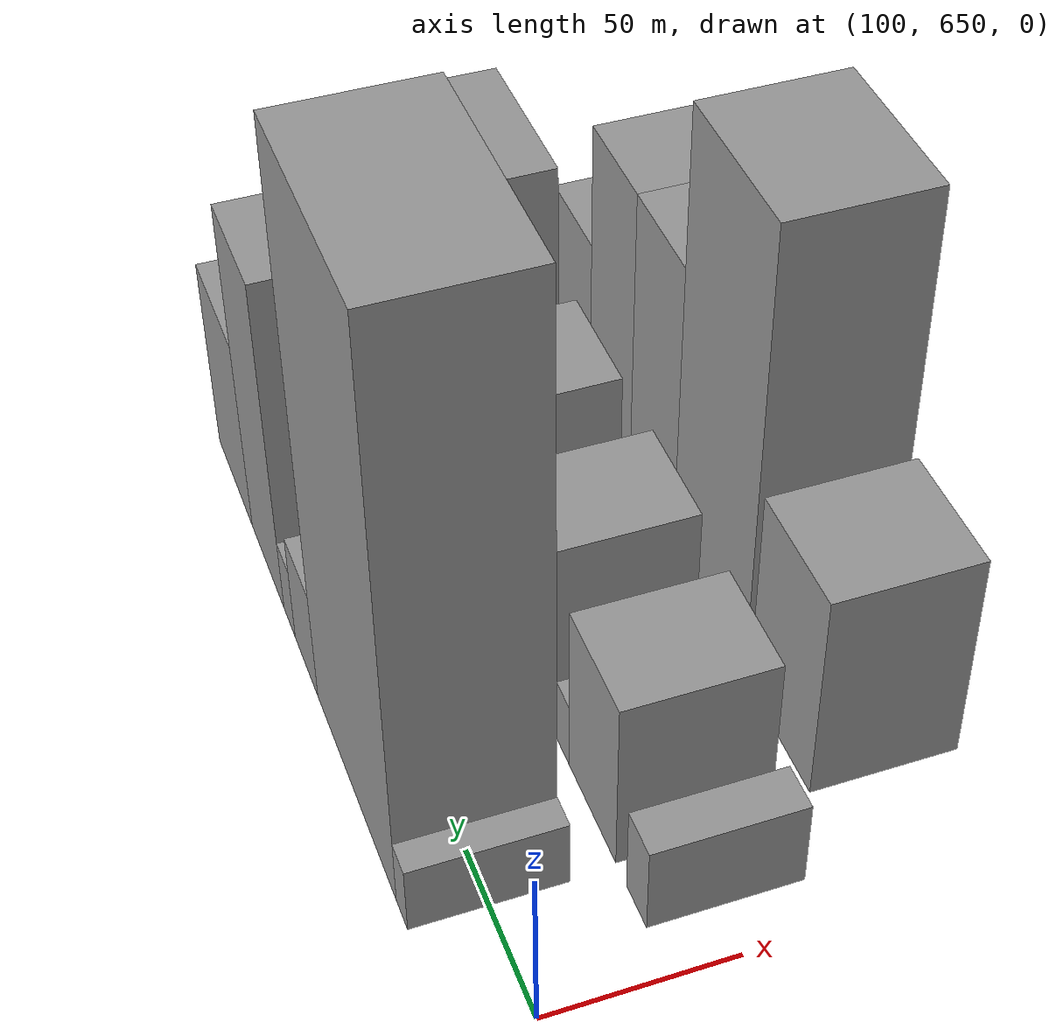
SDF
<sdf version="1.6">
 <world name="default">
  <model name="building_46">
   <static>1</static>
   <pose>100.0000 687.2384 0 0.000000 0.000000 0.000000</pose>
   <link name="link">
    <pose>0 0 10.50 0 0 0</pose>
    <collision name="collision"><geometry><box><size>40.0000 8.7828 21.0000</size></box></geometry></collision>
    <visual name="visual">
     <cast_shadows>0</cast_shadows>
     <geometry><box><size>40.0000 8.7828 21.0000</size></box></geometry>
     <material>
      <script>
       <uri>model://grey_wall/materials/scripts</uri>
       <uri>model://grey_wall/materials/textures</uri>
       <name>vrc/grey_wall</name>
      </script>
     </material>
    </visual>
   </link>
  </model>
  <model name="building_47">
   <static>1</static>
   <pose>100.0000 725.3479 0 0.000000 0.000000 0.000000</pose>
   <link name="link">
    <pose>0 0 88.50 0 0 0</pose>
    <collision name="collision"><geometry><box><size>40.0000 67.4363 177.0000</size></box></geometry></collision>
    <visual name="visual">
     <cast_shadows>0</cast_shadows>
     <geometry><box><size>40.0000 67.4363 177.0000</size></box></geometry>
     <material>
      <script>
       <uri>model://grey_wall/materials/scripts</uri>
       <uri>model://grey_wall/materials/textures</uri>
       <name>vrc/grey_wall</name>
      </script>
     </material>
    </visual>
   </link>
  </model>
  <model name="building_48">
   <static>1</static>
   <pose>100.0000 769.8377 0 0.000000 0.000000 0.000000</pose>
   <link name="link">
    <pose>0 0 18.00 0 0 0</pose>
    <collision name="collision"><geometry><box><size>40.0000 21.5433 36.0000</size></box></geometry></collision>
    <visual name="visual">
     <cast_shadows>0</cast_shadows>
     <geometry><box><size>40.0000 21.5433 36.0000</size></box></geometry>
     <material>
      <script>
       <uri>model://grey_wall/materials/scripts</uri>
       <uri>model://grey_wall/materials/textures</uri>
       <name>vrc/grey_wall</name>
      </script>
     </material>
    </visual>
   </link>
  </model>
  <model name="building_49">
   <static>1</static>
   <pose>100.0000 786.1714 0 0.000000 0.000000 0.000000</pose>
   <link name="link">
    <pose>0 0 12.00 0 0 0</pose>
    <collision name="collision"><geometry><box><size>40.0000 11.1240 24.0000</size></box></geometry></collision>
    <visual name="visual">
     <cast_shadows>0</cast_shadows>
     <geometry><box><size>40.0000 11.1240 24.0000</size></box></geometry>
     <material>
      <script>
       <uri>model://grey_wall/materials/scripts</uri>
       <uri>model://grey_wall/materials/textures</uri>
       <name>vrc/grey_wall</name>
      </script>
     </material>
    </visual>
   </link>
  </model>
  <model name="building_50">
   <static>1</static>
   <pose>100.0000 808.2883 0 0.000000 0.000000 0.000000</pose>
   <link name="link">
    <pose>0 0 54.00 0 0 0</pose>
    <collision name="collision"><geometry><box><size>40.0000 33.1097 108.0000</size></box></geometry></collision>
    <visual name="visual">
     <cast_shadows>0</cast_shadows>
     <geometry><box><size>40.0000 33.1097 108.0000</size></box></geometry>
     <material>
      <script>
       <uri>model://grey_wall/materials/scripts</uri>
       <uri>model://grey_wall/materials/textures</uri>
       <name>vrc/grey_wall</name>
      </script>
     </material>
    </visual>
   </link>
  </model>
  <model name="building_51">
   <static>1</static>
   <pose>100.0000 843.0996 0 0.000000 0.000000 0.000000</pose>
   <link name="link">
    <pose>0 0 31.50 0 0 0</pose>
    <collision name="collision"><geometry><box><size>40.0000 36.5130 63.0000</size></box></geometry></collision>
    <visual name="visual">
     <cast_shadows>0</cast_shadows>
     <geometry><box><size>40.0000 36.5130 63.0000</size></box></geometry>
     <material>
      <script>
       <uri>model://grey_wall/materials/scripts</uri>
       <uri>model://grey_wall/materials/textures</uri>
       <name>vrc/grey_wall</name>
      </script>
     </material>
    </visual>
   </link>
  </model>
  <model name="building_93">
   <static>1</static>
   <pose>152.0000 670.8228 0 0.000000 0.000000 0.000000</pose>
   <link name="link">
    <pose>0 0 13.50 0 0 0</pose>
    <collision name="collision"><geometry><box><size>40.0000 12.8127 27.0000</size></box></geometry></collision>
    <visual name="visual">
     <cast_shadows>0</cast_shadows>
     <geometry><box><size>40.0000 12.8127 27.0000</size></box></geometry>
     <material>
      <script>
       <uri>model://grey_wall/materials/scripts</uri>
       <uri>model://grey_wall/materials/textures</uri>
       <name>vrc/grey_wall</name>
      </script>
     </material>
    </visual>
   </link>
  </model>
  <model name="building_94">
   <static>1</static>
   <pose>152.0000 700.2923 0 0.000000 0.000000 0.000000</pose>
   <link name="link">
    <pose>0 0 27.00 0 0 0</pose>
    <collision name="collision"><geometry><box><size>40.0000 32.1263 54.0000</size></box></geometry></collision>
    <visual name="visual">
     <cast_shadows>0</cast_shadows>
     <geometry><box><size>40.0000 32.1263 54.0000</size></box></geometry>
     <material>
      <script>
       <uri>model://grey_wall/materials/scripts</uri>
       <uri>model://grey_wall/materials/textures</uri>
       <name>vrc/grey_wall</name>
      </script>
     </material>
    </visual>
   </link>
  </model>
  <model name="building_95">
   <static>1</static>
   <pose>152.0000 720.7714 0 0.000000 0.000000 0.000000</pose>
   <link name="link">
    <pose>0 0 10.50 0 0 0</pose>
    <collision name="collision"><geometry><box><size>40.0000 8.8319 21.0000</size></box></geometry></collision>
    <visual name="visual">
     <cast_shadows>0</cast_shadows>
     <geometry><box><size>40.0000 8.8319 21.0000</size></box></geometry>
     <material>
      <script>
       <uri>model://grey_wall/materials/scripts</uri>
       <uri>model://grey_wall/materials/textures</uri>
       <name>vrc/grey_wall</name>
      </script>
     </material>
    </visual>
   </link>
  </model>
  <model name="building_96">
   <static>1</static>
   <pose>152.0000 749.2084 0 0.000000 0.000000 0.000000</pose>
   <link name="link">
    <pose>0 0 28.50 0 0 0</pose>
    <collision name="collision"><geometry><box><size>40.0000 32.0421 57.0000</size></box></geometry></collision>
    <visual name="visual">
     <cast_shadows>0</cast_shadows>
     <geometry><box><size>40.0000 32.0421 57.0000</size></box></geometry>
     <material>
      <script>
       <uri>model://grey_wall/materials/scripts</uri>
       <uri>model://grey_wall/materials/textures</uri>
       <name>vrc/grey_wall</name>
      </script>
     </material>
    </visual>
   </link>
  </model>
  <model name="building_97">
   <static>1</static>
   <pose>152.0000 775.6037 0 0.000000 0.000000 0.000000</pose>
   <link name="link">
    <pose>0 0 18.00 0 0 0</pose>
    <collision name="collision"><geometry><box><size>40.0000 20.7485 36.0000</size></box></geometry></collision>
    <visual name="visual">
     <cast_shadows>0</cast_shadows>
     <geometry><box><size>40.0000 20.7485 36.0000</size></box></geometry>
     <material>
      <script>
       <uri>model://grey_wall/materials/scripts</uri>
       <uri>model://grey_wall/materials/textures</uri>
       <name>vrc/grey_wall</name>
      </script>
     </material>
    </visual>
   </link>
  </model>
  <model name="building_98">
   <static>1</static>
   <pose>152.0000 802.9114 0 0.000000 0.000000 0.000000</pose>
   <link name="link">
    <pose>0 0 28.50 0 0 0</pose>
    <collision name="collision"><geometry><box><size>40.0000 33.8669 57.0000</size></box></geometry></collision>
    <visual name="visual">
     <cast_shadows>0</cast_shadows>
     <geometry><box><size>40.0000 33.8669 57.0000</size></box></geometry>
     <material>
      <script>
       <uri>model://grey_wall/materials/scripts</uri>
       <uri>model://grey_wall/materials/textures</uri>
       <name>vrc/grey_wall</name>
      </script>
     </material>
    </visual>
   </link>
  </model>
  <model name="building_99">
   <static>1</static>
   <pose>152.0000 829.7463 0 0.000000 0.000000 0.000000</pose>
   <link name="link">
    <pose>0 0 9.00 0 0 0</pose>
    <collision name="collision"><geometry><box><size>40.0000 7.8029 18.0000</size></box></geometry></collision>
    <visual name="visual">
     <cast_shadows>0</cast_shadows>
     <geometry><box><size>40.0000 7.8029 18.0000</size></box></geometry>
     <material>
      <script>
       <uri>model://grey_wall/materials/scripts</uri>
       <uri>model://grey_wall/materials/textures</uri>
       <name>vrc/grey_wall</name>
      </script>
     </material>
    </visual>
   </link>
  </model>
  <model name="building_100">
   <static>1</static>
   <pose>152.0000 858.4060 0 0.000000 0.000000 0.000000</pose>
   <link name="link">
    <pose>0 0 45.00 0 0 0</pose>
    <collision name="collision"><geometry><box><size>40.0000 49.5165 90.0000</size></box></geometry></collision>
    <visual name="visual">
     <cast_shadows>0</cast_shadows>
     <geometry><box><size>40.0000 49.5165 90.0000</size></box></geometry>
     <material>
      <script>
       <uri>model://grey_wall/materials/scripts</uri>
       <uri>model://grey_wall/materials/textures</uri>
       <name>vrc/grey_wall</name>
      </script>
     </material>
    </visual>
   </link>
  </model>
  <model name="building_146">
   <static>1</static>
   <pose>204.0000 706.4020 0 0.000000 0.000000 0.000000</pose>
   <link name="link">
    <pose>0 0 33.00 0 0 0</pose>
    <collision name="collision"><geometry><box><size>40.0000 36.9171 66.0000</size></box></geometry></collision>
    <visual name="visual">
     <cast_shadows>0</cast_shadows>
     <geometry><box><size>40.0000 36.9171 66.0000</size></box></geometry>
     <material>
      <script>
       <uri>model://grey_wall/materials/scripts</uri>
       <uri>model://grey_wall/materials/textures</uri>
       <name>vrc/grey_wall</name>
      </script>
     </material>
    </visual>
   </link>
  </model>
  <model name="building_147">
   <static>1</static>
   <pose>204.0000 752.2710 0 0.000000 0.000000 0.000000</pose>
   <link name="link">
    <pose>0 0 72.00 0 0 0</pose>
    <collision name="collision"><geometry><box><size>40.0000 48.8209 144.0000</size></box></geometry></collision>
    <visual name="visual">
     <cast_shadows>0</cast_shadows>
     <geometry><box><size>40.0000 48.8209 144.0000</size></box></geometry>
     <material>
      <script>
       <uri>model://grey_wall/materials/scripts</uri>
       <uri>model://grey_wall/materials/textures</uri>
       <name>vrc/grey_wall</name>
      </script>
     </material>
    </visual>
   </link>
  </model>
  <model name="building_148">
   <static>1</static>
   <pose>204.0000 792.6814 0 0.000000 0.000000 0.000000</pose>
   <link name="link">
    <pose>0 0 48.00 0 0 0</pose>
    <collision name="collision"><geometry><box><size>40.0000 32.0000 96.0000</size></box></geometry></collision>
    <visual name="visual">
     <cast_shadows>0</cast_shadows>
     <geometry><box><size>40.0000 32.0000 96.0000</size></box></geometry>
     <material>
      <script>
       <uri>model://grey_wall/materials/scripts</uri>
       <uri>model://grey_wall/materials/textures</uri>
       <name>vrc/grey_wall</name>
      </script>
     </material>
    </visual>
   </link>
  </model>
  <model name="building_149">
   <static>1</static>
   <pose>204.0000 824.4551 0 0.000000 0.000000 0.000000</pose>
   <link name="link">
    <pose>0 0 48.00 0 0 0</pose>
    <collision name="collision"><geometry><box><size>40.0000 31.5474 96.0000</size></box></geometry></collision>
    <visual name="visual">
     <cast_shadows>0</cast_shadows>
     <geometry><box><size>40.0000 31.5474 96.0000</size></box></geometry>
     <material>
      <script>
       <uri>model://grey_wall/materials/scripts</uri>
       <uri>model://grey_wall/materials/textures</uri>
       <name>vrc/grey_wall</name>
      </script>
     </material>
    </visual>
   </link>
  </model>
  <model name="building_150">
   <static>1</static>
   <pose>204.0000 854.9163 0 0.000000 0.000000 0.000000</pose>
   <link name="link">
    <pose>0 0 28.50 0 0 0</pose>
    <collision name="collision"><geometry><box><size>40.0000 29.3750 57.0000</size></box></geometry></collision>
    <visual name="visual">
     <cast_shadows>0</cast_shadows>
     <geometry><box><size>40.0000 29.3750 57.0000</size></box></geometry>
     <material>
      <script>
       <uri>model://grey_wall/materials/scripts</uri>
       <uri>model://grey_wall/materials/textures</uri>
       <name>vrc/grey_wall</name>
      </script>
     </material>
    </visual>
   </link>
  </model>
 </world>
</sdf>
